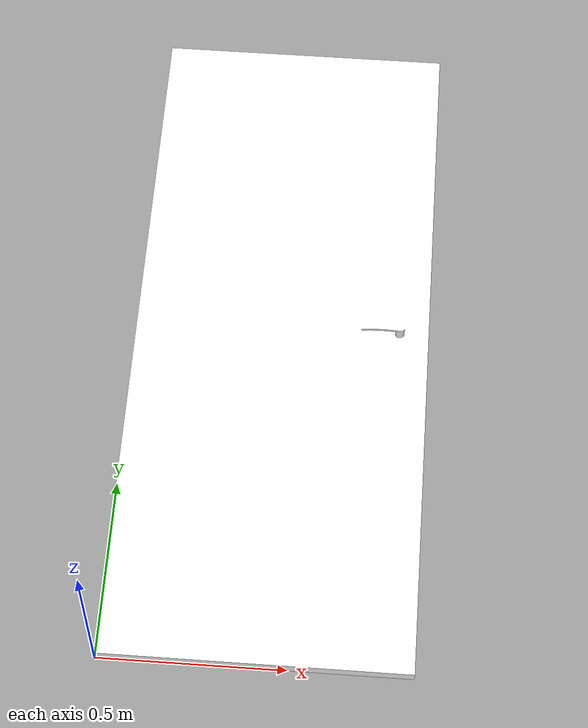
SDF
<?xml version="1.0" ?>
<sdf version="1.6">
  <model name="whitedoor">
    <static>true</static>
    <link name="link">
      <collision name="collision">
        <geometry>
          <mesh>
            <scale>1 1 1</scale>
            <uri>model://whitedoor/meshes/whitedoor.dae</uri>
          </mesh>
        </geometry>
      </collision>
      <visual name="visual">
        <geometry>
          <mesh>
            <scale>1 1 1</scale>
            <uri>model://whitedoor/meshes/whitedoor.dae</uri>
          </mesh>
        </geometry>
       <material>
         <script>
           <uri>model://flipchart/materials/scripts</uri>
           <uri>model://flipchart/materials/textures</uri>
           <name>FlipChart/Diffuse</name>
         </script>
       </material>
      </visual>
    </link>
  </model>
</sdf>
